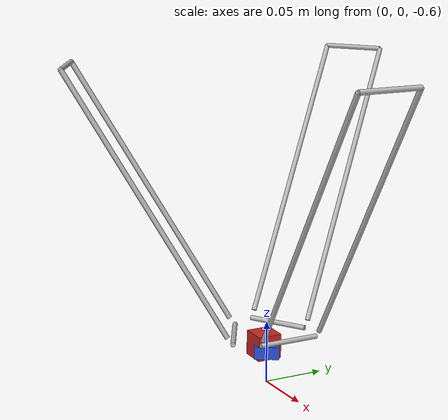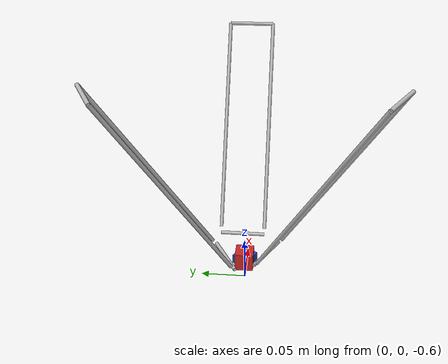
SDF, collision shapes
<sdf version='1.5'>
  <model name='FlyingDeltaArmLow'>

 <link name='con1'>
      <pose frame=''>0.1525 -0.000228 -0.346913429511 0.534996 -0 1.57</pose>
      <inertial>
        <pose frame=''>0.005 0 0 3.14159 1.57079 3.14159</pose>
        <mass>0.01</mass>
        <inertia>
          <ixx>2.093e-6</ixx>
          <ixy>0</ixy>
          <ixz>0</ixz>
          <iyy>2.093e-6</iyy>
          <iyz>0</iyz>
          <izz>2e-08</izz>
        </inertia>
      </inertial>
      <collision name='con1_collision'>
        <pose frame=''>0.005 0 0 3.14159 1.57079 3.14159</pose>
        <geometry>
          <cylinder>
            <length>0.05</length>
            <radius>0.002</radius>
          </cylinder>
        </geometry>
      </collision>
      <visual name='con1_visual'>
        <pose frame=''>0.005 0 0 3.14159 1.57079 3.14159</pose>
        <geometry>
          <cylinder>
            <length>0.05</length>
            <radius>0.002</radius>
          </cylinder>
        </geometry>
      </visual>
      <gravity>1</gravity>
    </link>

    <link name='lleg_12'>
      <pose frame=''>0.1525 0.029772 -0.346913429511 0.534996 -0 1.57</pose>
      <inertial>
        <pose frame=''>0 0 -0.12 0 -0 0</pose>
        <mass>0.012</mass>
        <inertia>
          <ixx>5.7612e-5</ixx>
          <ixy>0</ixy>
          <ixz>0</ixz>
          <iyy>5.7612e-5</iyy>
          <iyz>0</iyz>
          <izz>2.4e-08</izz>
        </inertia>
      </inertial>
      <collision name='lleg_12_collision'>
        <pose frame=''>0 0 -0.12 0 -0 0</pose>
        <geometry>
          <cylinder>
            <length>0.24</length>
            <radius>0.002</radius>
          </cylinder>
        </geometry>
      </collision>
      <visual name='lleg_12_visual'>
        <pose frame=''>0 0 -0.12 0 -0 0</pose>
        <geometry>
          <cylinder>
            <length>0.24</length>
            <radius>0.002</radius>
          </cylinder>
        </geometry>
      </visual>
      <gravity>1</gravity>
    </link>

<link name='lleg_1'>
      <pose frame=''>0.1525 -0.020228 -0.346913429511 0.534996 -0 1.57</pose>
      <inertial>
        <pose frame=''>0 0 -0.12 0 -0 0</pose>
        <mass>0.012</mass>
        <inertia>
          <ixx>5.7612e-5</ixx>
          <ixy>0</ixy>
          <ixz>0</ixz>
          <iyy>5.7612e-5</iyy>
          <iyz>0</iyz>
          <izz>2.4e-08</izz>
        </inertia>
      </inertial>
      <collision name='lleg_1_collision'>
        <pose frame=''>0 0 -0.12 0 -0 0</pose>
        <geometry>
          <cylinder>
            <length>0.24</length>
            <radius>0.002</radius>
          </cylinder>
        </geometry>
      </collision>
      <visual name='lleg_1_visual'>
        <pose frame=''>0 0 -0.12 0 -0 0</pose>
        <geometry>
          <cylinder>
            <length>0.24</length>
            <radius>0.002</radius>
          </cylinder>
        </geometry>
      </visual>
      <gravity>1</gravity>
    </link>

<link name='lleg_2'>
      <pose frame=''> -0.093767962 -0.121954874077  -0.346913429511 0.534996 -0 -0.524395</pose>
      <inertial>
        <pose frame=''>0 0 -0.12 0 -0 0</pose>
        <mass>0.012</mass>
        <inertia>
          <ixx>5.7612e-5</ixx>
          <ixy>0</ixy>
          <ixz>0</ixz>
          <iyy>5.7612e-5</iyy>
          <iyz>0</iyz>
          <izz>2.4e-08</izz>
        </inertia>
      </inertial>
      <collision name='lleg_2_collision'>
        <pose frame=''>0 0 -0.12 0 -0 0</pose>
        <geometry>
          <cylinder>
            <length>0.24</length>
            <radius>0.002</radius>
          </cylinder>
        </geometry>
      </collision>
      <visual name='lleg_2_visual'>
        <pose frame=''>0 0 -0.12 0 -0 0</pose>
        <geometry>
          <cylinder>
            <length>0.24</length>
            <radius>0.002</radius>
          </cylinder>
        </geometry>
      </visual>
      <gravity>1</gravity>
    </link>

<link name='lleg_3'>
      <pose frame=''>-0.05873204 0.1421828741 -0.346913429511 0.534996 -0 -2.61879</pose>
      <inertial>
        <pose frame=''>0 0 -0.12 0 -0 0</pose>
        <mass>0.012</mass>
        <inertia>
          <ixx>5.7612e-5</ixx>
          <ixy>0</ixy>
          <ixz>0</ixz>
          <iyy>5.7612e-5</iyy>
          <iyz>0</iyz>
          <izz>2.4e-08</izz>
        </inertia>
      </inertial>
      <collision name='lleg_3_collision'>
        <pose frame=''>0 0 -0.12 0 -0 0</pose>
        <geometry>
          <cylinder>
            <length>0.24</length>
            <radius>0.002</radius>
          </cylinder>
        </geometry>
      </collision>
      <visual name='lleg_3_visual'>
        <pose frame=''>0 0 -0.12 0 -0 0</pose>
        <geometry>
          <cylinder>
            <length>0.24</length>
            <radius>0.002</radius>
          </cylinder>
        </geometry>
      </visual>
      <gravity>1</gravity>
    </link>

    <link name='lleg_22'>
      <pose frame=''>-0.05046669 -0.146954874 -0.346913429511 0.534996 -0 -0.524395</pose>
      <inertial>
        <pose frame=''>0 0 -0.12 0 -0 0</pose>
        <mass>0.012</mass>
        <inertia>
          <ixx>5.7612e-5</ixx>
          <ixy>0</ixy>
          <ixz>0</ixz>
          <iyy>5.7612e-5</iyy>
          <iyz>0</iyz>
          <izz>2.4e-08</izz>
        </inertia>
      </inertial>
      <collision name='lleg_22_collision'>
        <pose frame=''>0 0 -0.12 0 -0 0</pose>
        <geometry>
          <cylinder>
            <length>0.24</length>
            <radius>0.002</radius>
          </cylinder>
        </geometry>
      </collision>
      <visual name='lleg_22_visual'>
        <pose frame=''>0 0 -0.12 0 -0 0</pose>
        <geometry>
          <cylinder>
            <length>0.24</length>
            <radius>0.002</radius>
          </cylinder>
        </geometry>
      </visual>
      <gravity>1</gravity>
    </link>

  <link name='lleg_32'>
      <pose frame=''>-0.10203331 0.1171828741 -0.346913429511 0.534996 -0 -2.61879</pose>
      <inertial>
        <pose frame=''>0 0 -0.12 0 -0 0</pose>
        <mass>0.012</mass>
        <inertia>
          <ixx>5.7612e-5</ixx>
          <ixy>0</ixy>
          <ixz>0</ixz>
          <iyy>5.7612e-5</iyy>
          <iyz>0</iyz>
          <izz>2.4e-08</izz>
        </inertia>
      </inertial>
      <collision name='lleg_32_collision'>
        <pose frame=''>0 0 -0.12 0 -0 0</pose>
        <geometry>
          <cylinder>
            <length>0.24</length>
            <radius>0.002</radius>
          </cylinder>
        </geometry>
      </collision>
      <visual name='lleg_32_visual'>
        <pose frame=''>0 0 -0.12 0 -0 0</pose>
        <geometry>
          <cylinder>
            <length>0.24</length>
            <radius>0.002</radius>
          </cylinder>
        </geometry>
      </visual>
      <gravity>1</gravity>
    </link>

    <link name='con13'>
      <pose frame=''>0.025857 0.029979 -0.558738 0.534996 -0 1.57</pose>
      <inertial>
        <pose frame=''>-0.025 0 0 3.14159 1.57079 3.14159</pose>
        <mass>0.01</mass>
        <inertia>
          <ixx>2.093e-6</ixx>
          <ixy>0</ixy>
          <ixz>0</ixz>
          <iyy>2.093e-6</iyy>
          <iyz>0</iyz>
          <izz>2e-08</izz>
        </inertia>
      </inertial>
      <collision name='con13_collision'>
        <pose frame=''>-0.025 0 0 3.14159 1.57079 3.14159</pose>
        <geometry>
          <cylinder>
            <length>0.05</length>
            <radius>0.002</radius>
          </cylinder>
        </geometry>
      </collision>
      <visual name='con13_visual'>
        <pose frame=''>-0.025 0 0 3.14159 1.57079 3.14159</pose>
        <geometry>
          <cylinder>
            <length>0.05</length>
            <radius>0.002</radius>
          </cylinder>
        </geometry>
      </visual>
      <gravity>1</gravity>
    </link>

    <link name='low_base'>
      <pose frame=''>0.025857 0.029979 -0.558738 0.034996 0 1.57</pose>
      <inertial>
        <pose frame=''>-0.03 0.03 0 0 -0 0</pose>
        <mass>0.1</mass>
        <inertia>
          <ixx>2.67e-04</ixx>
          <ixy>0</ixy>
          <ixz>0</ixz>
          <iyy>2.67e-04</iyy>
          <iyz>0</iyz>
          <izz>2.67e-04</izz>
        </inertia>
      </inertial>
      <visual name='low_base_visual_visual'>
        <pose frame=''>-0.07 -0.015 -0.012 0 -0 0</pose>
        <geometry>
          <mesh>
            <scale>0.001 0.001 0.001</scale>
            <uri>model://FlyingDelta/meshes/Platform.STL</uri>
          </mesh>
        </geometry>
        <material>
          <script>
            <uri>file://media/materials/scripts/gazebo.material</uri>
            <name>Gazebo/Red</name>
          </script>
        </material>
      </visual>
      <collision name='low_base_visual_visual_collision'>
       <pose frame=''>-0.03 0.03 -0.012 0 -0 0</pose>
        <geometry>
          <box>
            <size>0.02 0.02 0.02</size>
          </box>
        </geometry>
      </collision>
      <gravity>1</gravity>
    </link>

    <link name='marker'>
      <pose frame=''>0 0 -0.573 0 0 -0.5236</pose>
      <inertial>
        <pose frame=''>0 0 0 0 0 0 </pose>
        <mass>0.001</mass>
        <inertia>
          <ixx>2.67e-05</ixx>
          <ixy>0</ixy>
          <ixz>0</ixz>
          <iyy>2.67e-05</iyy>
          <iyz>0</iyz>
          <izz>2.67e-05</izz>
        </inertia>
      </inertial>
      <visual name='m_visual'>
        <pose frame=''>0 0 0 0 -0 0</pose>
        <geometry>
          <box>
            <size>0.02 0.02 0.01</size>
          </box>
        </geometry>
        <material>
          <script>
            <uri>file://media/materials/scripts/gazebo.material</uri>
            <name>Gazebo/Blue</name>
          </script>
        </material>
      </visual>
      <collision name='m_collision'>
       <pose frame=''>0 0  0  0 -0 0</pose>
        <geometry>
          <box>
            <size>0.02 0.02 0.01</size>
          </box>
        </geometry>
      </collision>
      <gravity>0</gravity>
    </link>

    <joint name="marker_fixed" type="fixed">
      <parent>low_base</parent>
      <child>marker</child>
    </joint>

    <link name='con2'>
      <pose frame=''>-0.076052546208 -0.132182874077 -0.346913429511 0.534996 -0 -0.524395</pose>
      <inertial>
        <pose frame=''>0.005 0 0 3.14159 1.57079 3.14159</pose>
        <mass>0.01</mass>
        <inertia>
          <ixx>2.093e-6</ixx>
          <ixy>0</ixy>
          <ixz>0</ixz>
          <iyy>2.093e-6</iyy>
          <iyz>0</iyz>
          <izz>2e-08</izz>
        </inertia>
      </inertial>
      <collision name='con2_collision'>
        <pose frame=''>0.005 0 0 3.14159 1.57079 3.14159</pose>
        <geometry>
          <cylinder>
            <length>0.05</length>
            <radius>0.002</radius>
          </cylinder>
        </geometry>
      </collision>
      <visual name='con2_visual'>
        <pose frame=''>0.005 0 0 3.14159 1.57079 3.14159</pose>
        <geometry>
          <cylinder>
            <length>0.05</length>
            <radius>0.002</radius>
          </cylinder>
        </geometry>
      </visual>
      <gravity>0</gravity>
    </link>

    <link name='con23'>
      <pose frame=''>0.01303407558 -0.037382319 -0.558738 0.534996 -0 -0.524395</pose>
      <inertial>
        <pose frame=''>-0.025 0 0 3.14159 1.57079 3.14159</pose>
        <mass>0.01</mass>
        <inertia>
          <ixx>2.093e-6</ixx>
          <ixy>0</ixy>
          <ixz>0</ixz>
          <iyy>2.093e-6</iyy>
          <iyz>0</iyz>
          <izz>2e-08</izz>
        </inertia>
      </inertial>
      <collision name='con23_collision'>
        <pose frame=''>-0.025 0 0 3.14159 1.57079 3.14159</pose>
        <geometry>
          <cylinder>
            <length>0.05</length>
            <radius>0.002</radius>
          </cylinder>
        </geometry>
      </collision>
      <visual name='con23_visual'>
        <pose frame=''>-0.025 0 0 3.14159 1.57079 3.14159</pose>
        <geometry>
          <cylinder>
            <length>0.05</length>
            <radius>0.002</radius>
          </cylinder>
        </geometry>
      </visual>
      <gravity>1</gravity>
    </link>

    <link name='con3'>
      <pose frame=''>-0.0764474538 0.13195487408 -0.346913429511 0.534996 -0 -2.61879</pose>
      <inertial>
        <pose frame=''>0.005 0 0 3.14159 1.57079 3.14159</pose>
        <mass>0.01</mass>
        <inertia>
          <ixx>2.093e-6</ixx>
          <ixy>0</ixy>
          <ixz>0</ixz>
          <iyy>2.093e-6</iyy>
          <iyz>0</iyz>
          <izz>2e-08</izz>
        </inertia>
      </inertial>
      <collision name='con3_collision'>
        <pose frame=''>0.005 0 0 3.14159 1.57079 3.14159</pose>
        <geometry>
          <cylinder>
            <length>0.05</length>
            <radius>0.002</radius>
          </cylinder>
        </geometry>
      </collision>
      <visual name='con3_visual'>
        <pose frame=''>0.005 0 0 3.14159 1.57079 3.14159</pose>
        <geometry>
          <cylinder>
            <length>0.05</length>
            <radius>0.002</radius>
          </cylinder>
        </geometry>
      </visual>
      <gravity>1</gravity>
    </link>

    <link name='con33'>
      <pose frame=''>-0.0388911 0.007403319 -0.558738 0.534996 -0 -2.61879</pose>
      <inertial>
        <pose frame=''>-0.025 0 0 3.14159 1.57079 3.14159</pose>
        <mass>0.01</mass>
        <inertia>
          <ixx>2.093e-6</ixx>
          <ixy>0</ixy>
          <ixz>0</ixz>
          <iyy>2.093e-6</iyy>
          <iyz>0</iyz>
          <izz>2e-08</izz>
        </inertia>
      </inertial>
      <collision name='con33_collision'>
        <pose frame=''>-0.025 0 0 3.14159 1.57079 3.14159</pose>
        <geometry>
          <cylinder>
            <length>0.05</length>
            <radius>0.002</radius>
          </cylinder>
        </geometry>
      </collision>
      <visual name='con33_visual'>
        <pose frame=''>-0.025 0 0 3.14159 1.57079 3.14159</pose>
        <geometry>
          <cylinder>
            <length>0.05</length>
            <radius>0.002</radius>
          </cylinder>
        </geometry>
      </visual>
      <gravity>1</gravity>
    </link>

    <joint name='con2_lleg_3' type='revolute'>
      <child>lleg_32</child>
      <parent>con3</parent>
      <axis>
        <xyz>0.429542 -0.745358 0.509838</xyz>
        <limit>
          <lower>-1e+16</lower>
          <upper>1e+16</upper>
        </limit>
        <dynamics>
          <spring_reference>0</spring_reference>
          <spring_stiffness>0</spring_stiffness>

        </dynamics>
        <use_parent_model_frame>1</use_parent_model_frame>
      </axis>
    </joint>

    <joint name='con33_lleg_3' type='revolute'>
      <child>con33</child>
      <parent>lleg_32</parent>
      <axis>
        <xyz>0.429542 -0.745358 0.509838</xyz>
        <limit>
          <lower>-1e+16</lower>
          <upper>1e+16</upper>
        </limit>
        <dynamics>
          <spring_reference>0</spring_reference>
          <spring_stiffness>0</spring_stiffness>

        </dynamics>
        <use_parent_model_frame>1</use_parent_model_frame>
      </axis>
    </joint>

    <joint name='con_lleg_3' type='revolute'>
      <child>lleg_3</child>
      <parent>con3</parent>
      <axis>
        <xyz>0.429542 -0.745358 0.509838</xyz>
        <limit>
          <lower>-1e+16</lower>
          <upper>1e+16</upper>
        </limit>
        <dynamics>
          <spring_reference>0</spring_reference>
          <spring_stiffness>0</spring_stiffness>

        </dynamics>
        <use_parent_model_frame>1</use_parent_model_frame>
      </axis>
    </joint>

    <joint name='con33_lleg_32' type='revolute'>
      <child>con33</child>
      <parent>lleg_3</parent>
      <pose frame=''>-0.05 0 0 0 -0 0</pose>
      <axis>
        <xyz> 0.509838 0.86027 0.000685  </xyz>
        <limit>
          <lower>-100</lower>
          <upper>100</upper>
        </limit>
        <dynamics>
          <spring_reference>0</spring_reference>
          <spring_stiffness>0</spring_stiffness>
          <damping>0</damping>
          <friction>0.0003</friction>
        </dynamics>
        <use_parent_model_frame>0</use_parent_model_frame>
        <use_parent_model_frame>1</use_parent_model_frame>
      </axis>
    </joint>

    <joint name='con23_lleg_22' type='revolute'>
      <child>con23</child>
      <parent>lleg_2</parent>
      <pose frame=''>-0.05 0 0 0 -0 0</pose>
      <axis>
        <xyz> 0.509838 0.86027 0.000685 </xyz>
        <limit>
          <lower>-100</lower>
          <upper>100</upper>
        </limit>
        <dynamics>
          <spring_reference>0</spring_reference>
          <spring_stiffness>0</spring_stiffness>
          <damping>0</damping>
          <friction>0.0003</friction>
        </dynamics>
        <use_parent_model_frame>0</use_parent_model_frame>
        <use_parent_model_frame>1</use_parent_model_frame>
      </axis>
    </joint>
    <joint name='con_lleg_2' type='revolute'>
      <child>lleg_2</child>
      <parent>con2</parent>
      <axis>
        <xyz>0.430728 0.744673 0.509838</xyz>
        <limit>
          <lower>-1e+16</lower>
          <upper>1e+16</upper>
        </limit>
        <dynamics>
          <spring_reference>0</spring_reference>
          <spring_stiffness>0</spring_stiffness>

        </dynamics>
        <use_parent_model_frame>1</use_parent_model_frame>
      </axis>
    </joint>
    <joint name='con2_lleg_2' type='revolute'>
      <child>lleg_22</child>
      <parent>con2</parent>
      <axis>
        <xyz>0.430728 0.744673 0.509838</xyz>
        <limit>
          <lower>-1e+16</lower>
          <upper>1e+16</upper>
        </limit>
        <dynamics>
          <spring_reference>0</spring_reference>
          <spring_stiffness>0</spring_stiffness>

        </dynamics>
        <use_parent_model_frame>1</use_parent_model_frame>
      </axis>
    </joint>

    <joint name='con23_lleg_2' type='revolute'>
      <child>con23</child>
      <parent>lleg_22</parent>
      <axis>
        <xyz>0.430728 0.744673 0.509838</xyz>
        <limit>
          <lower>-1e+16</lower>
          <upper>1e+16</upper>
        </limit>
        <dynamics>
          <spring_reference>0</spring_reference>
          <spring_stiffness>0</spring_stiffness>

        </dynamics>
        <use_parent_model_frame>1</use_parent_model_frame>
      </axis>
    </joint>

    <joint name='con13_lleg_1' type='revolute'>
      <child>con13</child>
      <parent>lleg_12</parent>
      <axis>
        <xyz>-0.86027 0.000685 0.509838</xyz>
        <limit>
          <lower>-1e+16</lower>
          <upper>1e+16</upper>
        </limit>
        <dynamics>
          <spring_reference>0</spring_reference>
          <spring_stiffness>0</spring_stiffness>

        </dynamics>
        <use_parent_model_frame>1</use_parent_model_frame>
      </axis>
    </joint>
    <joint name='con_lleg_1' type='revolute'>
      <child>lleg_1</child>
      <parent>con1</parent>
      <axis>
        <xyz>-0.86027 0.000685 0.509838</xyz>
        <limit>
          <lower>-1e+16</lower>
          <upper>1e+16</upper>
        </limit>
        <dynamics>
          <spring_reference>0</spring_reference>
          <spring_stiffness>0</spring_stiffness>

        </dynamics>
        <use_parent_model_frame>1</use_parent_model_frame>
      </axis>
    </joint>
        <joint name='con2_lleg_1' type='revolute'>
      <child>lleg_12</child>
      <parent>con1</parent>
      <axis>
        <xyz>-0.86027 0.000685 0.509838</xyz>
        <limit>
          <lower>-1e+16</lower>
          <upper>1e+16</upper>
        </limit>
        <dynamics>
          <spring_reference>0</spring_reference>
          <spring_stiffness>0</spring_stiffness>

        </dynamics>
        <use_parent_model_frame>1</use_parent_model_frame>
      </axis>
    </joint>
    <joint name='con13_lleg_12' type='revolute'>
      <child>con13</child>
      <parent>lleg_1</parent>
      <pose frame=''>-0.05 0 0 0 -0 0</pose>
      <axis>
        <xyz> 0.509838 0.86027 0.000685 </xyz>
        <limit>
          <lower>-100</lower>
          <upper>100</upper>
        </limit>
        <dynamics>
          <spring_reference>0</spring_reference>
          <spring_stiffness>0</spring_stiffness>
          <damping>0</damping>
          <friction>0.0003</friction>
        </dynamics>
        <use_parent_model_frame>0</use_parent_model_frame>
        <use_parent_model_frame>1</use_parent_model_frame>
      </axis>
    </joint>

    <joint name='lleg1_base' type='revolute'>
      <child>low_base</child>
      <parent>con13</parent>
      <axis>
        <xyz> 0 1 0 </xyz>
        <limit>
          <lower>-1e+16</lower>
          <upper>1e+16</upper>
        </limit>
        <dynamics>
          <spring_reference>0</spring_reference>
          <spring_stiffness>0</spring_stiffness>

        </dynamics>
        <use_parent_model_frame>1</use_parent_model_frame>
      </axis>
    </joint>

    <joint name='lleg2_base' type='revolute'>
      <child>con23</child>
      <parent>low_base</parent>
      <pose frame=''>0 0 0 0 -0 0</pose>
      <axis>
        <xyz> 0.86027 -0.509838 0.000685</xyz>
        <limit>
          <lower>-100</lower>
          <upper>100</upper>
        </limit>
        <dynamics>
          <spring_reference>0</spring_reference>
          <spring_stiffness>0</spring_stiffness>
          <damping>0</damping>

        </dynamics>
        <use_parent_model_frame>0</use_parent_model_frame>
        <use_parent_model_frame>1</use_parent_model_frame>
      </axis>
    </joint>

    <joint name='lleg3_base' type='revolute'>
      <child>con33</child>
      <parent>low_base</parent>
      <pose frame=''>0 0 0 0 -0 0</pose>
      <axis>
        <xyz>0.86027 -0.509838 0.000685</xyz>
        <limit>
          <lower>-100</lower>
          <upper>100</upper>
        </limit>
        <dynamics>
          <spring_reference>0</spring_reference>
          <spring_stiffness>0</spring_stiffness>
          <damping>0</damping>
        </dynamics>
        <use_parent_model_frame>0</use_parent_model_frame>
        <use_parent_model_frame>1</use_parent_model_frame>
      </axis>
    </joint>
    <static>0</static>
    <self_collide>0</self_collide>
    <enable_wind>0</enable_wind>

  </model>
</sdf>
